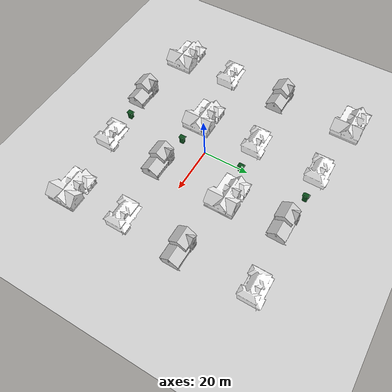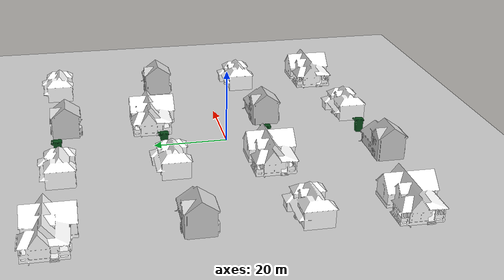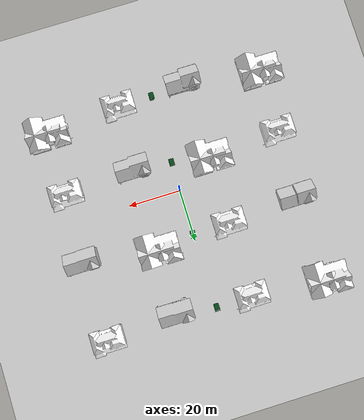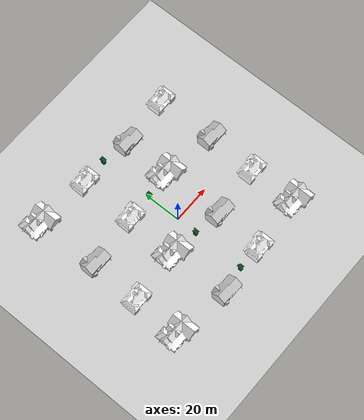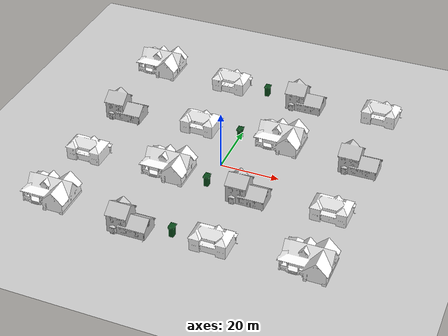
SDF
<sdf version="1.6">
 <world name="stage2">
  <light name="sun" type="directional">
   <pose>0 0 10 0 -0 0</pose>
   <diffuse>0.8 0.8 0.8 1</diffuse>
   <specular>0.1 0.1 0.1 1</specular>
   <attenuation>
    <range>1000</range>
    <constant>0.9</constant>
    <linear>0.01</linear>
    <quadratic>0.001</quadratic>
   </attenuation>
   <direction>-0.5 0.5 -1</direction>
  </light>
  <gravity>0 0 -9.8</gravity>
  <magnetic_field>6e-06 2.3e-05 -4.2e-05</magnetic_field>
  <atmosphere type="adiabatic"/>
  <physics name="default_physics" default="0" type="ode">
   <max_step_size>0.001</max_step_size>
   <real_time_factor>1</real_time_factor>
   <real_time_update_rate>1000</real_time_update_rate>
  </physics>
  <scene><ambient>0.4 0.4 0.4 1</ambient><background>0.7 0.7 0.7 1</background><shadows>1</shadows></scene>
  <spherical_coordinates>
   <surface_model>EARTH_WGS84</surface_model>
   <latitude_deg>0</latitude_deg>
   <longitude_deg>0</longitude_deg>
   <elevation>0</elevation>
   <heading_deg>0</heading_deg>
  </spherical_coordinates>
  <model name="stage2_plane">
   <static>1</static>
   <link name="link">
    <collision name="collision">
     <geometry><plane><normal>0 0 1</normal><size>150 150</size></plane></geometry>
     <surface>
      <contact><collide_bitmask>65535</collide_bitmask></contact>
      <friction><ode><mu>100</mu><mu2>50</mu2></ode></friction>
     </surface>
    </collision>
    <visual name="visual">
     <cast_shadows>0</cast_shadows>
     <geometry><plane><normal>0 0 1</normal><size>150 150</size></plane></geometry>
     <material>
      <script>
       <uri>model://stage2_plane/materials/scripts/</uri>
       <uri>model://stage2_plane/materials/textures/</uri>
       <name>Stage2/Material</name>
      </script>
     </material>
    </visual>
   </link>
  </model>
  <audio><device>default</device></audio>
  <model name="House 1">
   <static>1</static>
   <link name="link">
    <collision name="collision">
     <geometry><mesh><uri>model://house_1/meshes/house_1.dae</uri><scale>1.5 1.5 1.5</scale></mesh></geometry>
    </collision>
    <visual name="visual">
     <geometry><mesh><uri>model://house_1/meshes/house_1.dae</uri><scale>1.5 1.5 1.5</scale></mesh></geometry>
     <material>
      <script>
       <uri>model://house_1/materials/scripts</uri>
       <uri>model://house_1/materials/textures</uri>
       <name>House_1/Diffuse</name>
      </script>
     </material>
    </visual>
   </link>
   <pose>-42.8781 47.8693 0 0 -0 0</pose>
  </model>
  <model name="House 2">
   <static>1</static>
   <link name="link">
    <collision name="collision">
     <geometry><mesh><uri>model://house_2/meshes/house_2.dae</uri><scale>1.5 1.5 1.5</scale></mesh></geometry>
    </collision>
    <visual name="visual">
     <geometry><mesh><uri>model://house_2/meshes/house_2.dae</uri><scale>1.5 1.5 1.5</scale></mesh></geometry>
     <material>
      <script>
       <uri>model://house_2/materials/scripts</uri>
       <uri>model://house_2/materials/textures</uri>
       <uri>model://house_1/materials/textures</uri>
       <name>House_2/Diffuse</name>
      </script>
     </material>
    </visual>
   </link>
   <pose>-15.0974 45.0052 0 0 -0 0</pose>
  </model>
  <model name="House 3">
   <static>1</static>
   <link name="link">
    <collision name="collision">
     <geometry><mesh><uri>model://house_3/meshes/house_3.dae</uri><scale>1.5 1.5 1.5</scale></mesh></geometry>
    </collision>
    <visual name="visual">
     <geometry><mesh><uri>model://house_3/meshes/house_3.dae</uri><scale>1.5 1.5 1.5</scale></mesh></geometry>
     <material>
      <script>
       <uri>model://house_3/materials/scripts</uri>
       <uri>model://house_3/materials/textures</uri>
       <uri>model://house_1/materials/textures</uri>
       <name>House_3/Diffuse</name>
      </script>
     </material>
    </visual>
   </link>
   <pose>15.2876 43.2862 0 0 -0 0</pose>
  </model>
  <model name="House 2_0">
   <static>1</static>
   <link name="link">
    <collision name="collision">
     <geometry><mesh><uri>model://house_2/meshes/house_2.dae</uri><scale>1.5 1.5 1.5</scale></mesh></geometry>
    </collision>
    <visual name="visual">
     <geometry><mesh><uri>model://house_2/meshes/house_2.dae</uri><scale>1.5 1.5 1.5</scale></mesh></geometry>
     <material>
      <script>
       <uri>model://house_2/materials/scripts</uri>
       <uri>model://house_2/materials/textures</uri>
       <uri>model://house_1/materials/textures</uri>
       <name>House_2/Diffuse</name>
      </script>
     </material>
    </visual>
   </link>
   <pose>40.5727 45.0054 0 0 -0 0</pose>
  </model>
  <model name="House 1_0">
   <static>1</static>
   <link name="link">
    <collision name="collision">
     <geometry><mesh><uri>model://house_1/meshes/house_1.dae</uri><scale>1.5 1.5 1.5</scale></mesh></geometry>
    </collision>
    <visual name="visual">
     <geometry><mesh><uri>model://house_1/meshes/house_1.dae</uri><scale>1.5 1.5 1.5</scale></mesh></geometry>
     <material>
      <script>
       <uri>model://house_1/materials/scripts</uri>
       <uri>model://house_1/materials/textures</uri>
       <name>House_1/Diffuse</name>
      </script>
     </material>
    </visual>
   </link>
   <pose>14.2833 19.2669 0 0 -0 0</pose>
  </model>
  <model name="House 3_0">
   <static>1</static>
   <link name="link">
    <collision name="collision">
     <geometry><mesh><uri>model://house_3/meshes/house_3.dae</uri><scale>1.5 1.5 1.5</scale></mesh></geometry>
    </collision>
    <visual name="visual">
     <geometry><mesh><uri>model://house_3/meshes/house_3.dae</uri><scale>1.5 1.5 1.5</scale></mesh></geometry>
     <material>
      <script>
       <uri>model://house_3/materials/scripts</uri>
       <uri>model://house_3/materials/textures</uri>
       <uri>model://house_1/materials/textures</uri>
       <name>House_3/Diffuse</name>
      </script>
     </material>
    </visual>
   </link>
   <pose>43.3064 14.6894 0 0 -0 0</pose>
  </model>
  <model name="House 2_1">
   <static>1</static>
   <link name="link">
    <collision name="collision">
     <geometry><mesh><uri>model://house_2/meshes/house_2.dae</uri><scale>1.5 1.5 1.5</scale></mesh></geometry>
    </collision>
    <visual name="visual">
     <geometry><mesh><uri>model://house_2/meshes/house_2.dae</uri><scale>1.5 1.5 1.5</scale></mesh></geometry>
     <material>
      <script>
       <uri>model://house_2/materials/scripts</uri>
       <uri>model://house_2/materials/textures</uri>
       <uri>model://house_1/materials/textures</uri>
       <name>House_2/Diffuse</name>
      </script>
     </material>
    </visual>
   </link>
   <pose>-15.1762 16.518 0 0 -0 0</pose>
  </model>
  <model name="House 2_2">
   <static>1</static>
   <link name="link">
    <collision name="collision">
     <geometry><mesh><uri>model://house_2/meshes/house_2.dae</uri><scale>1.5 1.5 1.5</scale></mesh></geometry>
    </collision>
    <visual name="visual">
     <geometry><mesh><uri>model://house_2/meshes/house_2.dae</uri><scale>1.5 1.5 1.5</scale></mesh></geometry>
     <material>
      <script>
       <uri>model://house_2/materials/scripts</uri>
       <uri>model://house_2/materials/textures</uri>
       <uri>model://house_1/materials/textures</uri>
       <name>House_2/Diffuse</name>
      </script>
     </material>
    </visual>
   </link>
   <pose>40.4445 -11.5336 0 0 -0 0</pose>
  </model>
  <model name="House 3_1">
   <static>1</static>
   <link name="link">
    <collision name="collision">
     <geometry><mesh><uri>model://house_3/meshes/house_3.dae</uri><scale>1.5 1.5 1.5</scale></mesh></geometry>
    </collision>
    <visual name="visual">
     <geometry><mesh><uri>model://house_3/meshes/house_3.dae</uri><scale>1.5 1.5 1.5</scale></mesh></geometry>
     <material>
      <script>
       <uri>model://house_3/materials/scripts</uri>
       <uri>model://house_3/materials/textures</uri>
       <uri>model://house_1/materials/textures</uri>
       <name>House_3/Diffuse</name>
      </script>
     </material>
    </visual>
   </link>
   <pose>15.1671 -13.251 0 0 -0 0</pose>
  </model>
  <model name="House 1_1">
   <static>1</static>
   <link name="link">
    <collision name="collision">
     <geometry><mesh><uri>model://house_1/meshes/house_1.dae</uri><scale>1.5 1.5 1.5</scale></mesh></geometry>
    </collision>
    <visual name="visual">
     <geometry><mesh><uri>model://house_1/meshes/house_1.dae</uri><scale>1.5 1.5 1.5</scale></mesh></geometry>
     <material>
      <script>
       <uri>model://house_1/materials/scripts</uri>
       <uri>model://house_1/materials/textures</uri>
       <name>House_1/Diffuse</name>
      </script>
     </material>
    </visual>
   </link>
   <pose>-14.5627 -8.86696 0 0 -0 0</pose>
  </model>
  <model name="House 3_2">
   <static>1</static>
   <link name="link">
    <collision name="collision">
     <geometry><mesh><uri>model://house_3/meshes/house_3.dae</uri><scale>1.5 1.5 1.5</scale></mesh></geometry>
    </collision>
    <visual name="visual">
     <geometry><mesh><uri>model://house_3/meshes/house_3.dae</uri><scale>1.5 1.5 1.5</scale></mesh></geometry>
     <material>
      <script>
       <uri>model://house_3/materials/scripts</uri>
       <uri>model://house_3/materials/textures</uri>
       <uri>model://house_1/materials/textures</uri>
       <name>House_3/Diffuse</name>
      </script>
     </material>
    </visual>
   </link>
   <pose>-40.8114 14.6961 0 0 -0 0</pose>
  </model>
  <model name="House 2_3">
   <static>1</static>
   <link name="link">
    <collision name="collision">
     <geometry><mesh><uri>model://house_2/meshes/house_2.dae</uri><scale>1.5 1.5 1.5</scale></mesh></geometry>
    </collision>
    <visual name="visual">
     <geometry><mesh><uri>model://house_2/meshes/house_2.dae</uri><scale>1.5 1.5 1.5</scale></mesh></geometry>
     <material>
      <script>
       <uri>model://house_2/materials/scripts</uri>
       <uri>model://house_2/materials/textures</uri>
       <uri>model://house_1/materials/textures</uri>
       <name>House_2/Diffuse</name>
      </script>
     </material>
    </visual>
   </link>
   <pose>-43.6069 -11.5879 0 0 -0 0</pose>
  </model>
  <model name="House 2_4">
   <static>1</static>
   <link name="link">
    <collision name="collision">
     <geometry><mesh><uri>model://house_2/meshes/house_2.dae</uri><scale>1.5 1.5 1.5</scale></mesh></geometry>
    </collision>
    <visual name="visual">
     <geometry><mesh><uri>model://house_2/meshes/house_2.dae</uri><scale>1.5 1.5 1.5</scale></mesh></geometry>
     <material>
      <script>
       <uri>model://house_2/materials/scripts</uri>
       <uri>model://house_2/materials/textures</uri>
       <uri>model://house_1/materials/textures</uri>
       <name>House_2/Diffuse</name>
      </script>
     </material>
    </visual>
   </link>
   <pose>11.8074 -38.4123 0 0 -0 0</pose>
  </model>
  <model name="House 1_2">
   <static>1</static>
   <link name="link">
    <collision name="collision">
     <geometry><mesh><uri>model://house_1/meshes/house_1.dae</uri><scale>1.5 1.5 1.5</scale></mesh></geometry>
    </collision>
    <visual name="visual">
     <geometry><mesh><uri>model://house_1/meshes/house_1.dae</uri><scale>1.5 1.5 1.5</scale></mesh></geometry>
     <material>
      <script>
       <uri>model://house_1/materials/scripts</uri>
       <uri>model://house_1/materials/textures</uri>
       <name>House_1/Diffuse</name>
      </script>
     </material>
    </visual>
   </link>
   <pose>42.0951 -35.4529 0 0 -0 0</pose>
  </model>
  <model name="House 3_3">
   <static>1</static>
   <link name="link">
    <collision name="collision">
     <geometry><mesh><uri>model://house_3/meshes/house_3.dae</uri><scale>1.5 1.5 1.5</scale></mesh></geometry>
    </collision>
    <visual name="visual">
     <geometry><mesh><uri>model://house_3/meshes/house_3.dae</uri><scale>1.5 1.5 1.5</scale></mesh></geometry>
     <material>
      <script>
       <uri>model://house_3/materials/scripts</uri>
       <uri>model://house_3/materials/textures</uri>
       <uri>model://house_1/materials/textures</uri>
       <name>House_3/Diffuse</name>
      </script>
     </material>
    </visual>
   </link>
   <pose>-12.7366 -40.0404 0 0 -0 0</pose>
  </model>
  <model name="House 1_3">
   <static>1</static>
   <link name="link">
    <collision name="collision">
     <geometry><mesh><uri>model://house_1/meshes/house_1.dae</uri><scale>1.5 1.5 1.5</scale></mesh></geometry>
    </collision>
    <visual name="visual">
     <geometry><mesh><uri>model://house_1/meshes/house_1.dae</uri><scale>1.5 1.5 1.5</scale></mesh></geometry>
     <material>
      <script>
       <uri>model://house_1/materials/scripts</uri>
       <uri>model://house_1/materials/textures</uri>
       <name>House_1/Diffuse</name>
      </script>
     </material>
    </visual>
   </link>
   <pose>-42.8587 -35.3911 0 0 -0 0</pose>
  </model>
  <model name="wheelie_bin">
   <link name="link">
    <collision name="collision">
     <geometry><mesh><scale>0.75 0.75 0.75</scale><uri>model://wheelie_bin/wheelie_bin.stl</uri></mesh></geometry>
    </collision>
    <visual name="visual">
     <geometry><mesh><scale>0.75 0.75 0.75</scale><uri>model://wheelie_bin/wheelie_bin.stl</uri></mesh></geometry>
     <material>
      <ambient>0.035 0.29 0.1 1</ambient>
      <diffuse>0.035 0.29 0.1 1</diffuse>
      <specular>0.035 0.29 0.1 1</specular>
     </material>
    </visual>
    <inertial>
     <inertia><ixx>1</ixx><ixy>0</ixy><ixz>0</ixz><iyy>1</iyy><iyz>0</iyz><izz>1</izz></inertia>
     <mass>1</mass>
    </inertial>
   </link>
   <pose>-0.332586 45.6013 0.070386 -1e-06 -5e-06 -1.58179</pose>
  </model>
  <model name="wheelie_bin_clone">
   <link name="link">
    <collision name="collision">
     <geometry><mesh><scale>0.75 0.75 0.75</scale><uri>model://wheelie_bin/wheelie_bin.stl</uri></mesh></geometry>
    </collision>
    <visual name="visual">
     <geometry><mesh><scale>0.75 0.75 0.75</scale><uri>model://wheelie_bin/wheelie_bin.stl</uri></mesh></geometry>
     <material>
      <ambient>0.035 0.29 0.1 1</ambient>
      <diffuse>0.035 0.29 0.1 1</diffuse>
      <specular>0.035 0.29 0.1 1</specular>
     </material>
    </visual>
    <inertial>
     <inertia><ixx>1</ixx><ixy>0</ixy><ixz>0</ixz><iyy>1</iyy><iyz>0</iyz><izz>1</izz></inertia>
     <mass>1</mass>
    </inertial>
   </link>
   <pose>0.092595 17.1449 0.070387 0 2e-06 -1.58182</pose>
  </model>
  <model name="wheelie_bin_clone_0">
   <link name="link">
    <collision name="collision">
     <geometry><mesh><scale>0.75 0.75 0.75</scale><uri>model://wheelie_bin/wheelie_bin.stl</uri></mesh></geometry>
    </collision>
    <visual name="visual">
     <geometry><mesh><scale>0.75 0.75 0.75</scale><uri>model://wheelie_bin/wheelie_bin.stl</uri></mesh></geometry>
     <material>
      <ambient>0.035 0.29 0.1 1</ambient>
      <diffuse>0.035 0.29 0.1 1</diffuse>
      <specular>0.035 0.29 0.1 1</specular>
     </material>
    </visual>
    <inertial>
     <inertia><ixx>1</ixx><ixy>0</ixy><ixz>0</ixz><iyy>1</iyy><iyz>0</iyz><izz>1</izz></inertia>
     <mass>1</mass>
    </inertial>
   </link>
   <pose>-0.249949 -11.1668 0.070386 -1e-06 -5e-06 -1.58181</pose>
  </model>
  <model name="wheelie_bin_clone_1">
   <link name="link">
    <collision name="collision">
     <geometry><mesh><scale>0.75 0.75 0.75</scale><uri>model://wheelie_bin/wheelie_bin.stl</uri></mesh></geometry>
    </collision>
    <visual name="visual">
     <geometry><mesh><scale>0.75 0.75 0.75</scale><uri>model://wheelie_bin/wheelie_bin.stl</uri></mesh></geometry>
     <material>
      <ambient>0.035 0.29 0.1 1</ambient>
      <diffuse>0.035 0.29 0.1 1</diffuse>
      <specular>0.035 0.29 0.1 1</specular>
     </material>
    </visual>
    <inertial>
     <inertia><ixx>1</ixx><ixy>0</ixy><ixz>0</ixz><iyy>1</iyy><iyz>0</iyz><izz>1</izz></inertia>
     <mass>1</mass>
    </inertial>
   </link>
   <pose>-0.332702 -37.9871 0.070391 -1e-05 -4e-06 -1.58183</pose>
  </model>
 </world>
</sdf>
